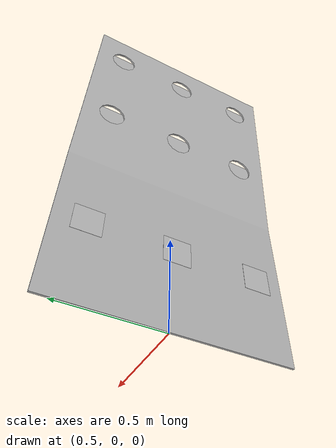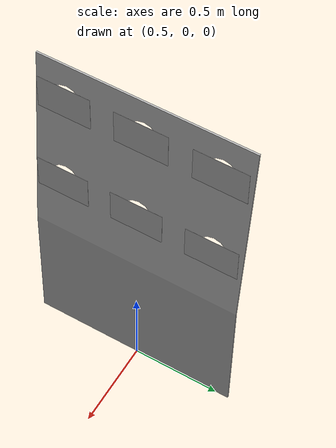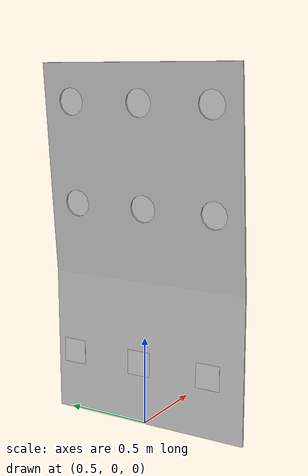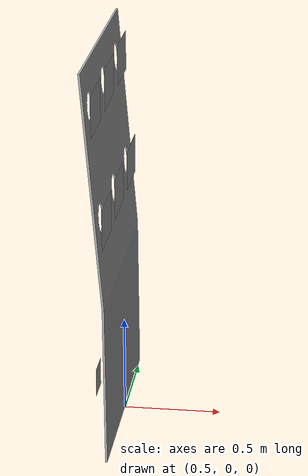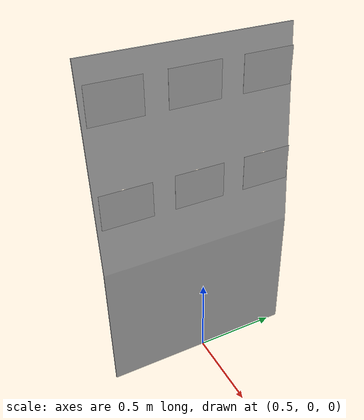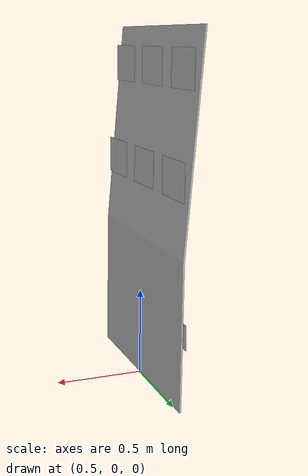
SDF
<?xml version='1.0'?>
<sdf version='1.6'>
  <model name='steel_tke_glovebox'>
    <link name='base_link'>
      <pose frame=''>0 0 0 0 0 0</pose>

      <visual name='visual'>
        <pose frame=''>0 0 0 0 0 0</pose>
        <geometry>
          <mesh>
            <uri>model://steel_tke_glovebox/meshes/steel_tke_glovebox.stl</uri>
            <scale>1 1 1</scale>
          </mesh>
        </geometry>
        <material>
          <lighting>1</lighting>
          <ambient>0.3 0.3 0.3 1</ambient>
          <diffuse>0.7 0.7 0.7 1</diffuse>
          <specular>0.01 0.01 0.01 1</specular>
          <emissive>0 0 0 1</emissive>
          <shader type='vertex'>
            <normal_map>__default__</normal_map>
          </shader>
        </material>
        <cast_shadows>1</cast_shadows>
        <transparency>0</transparency>
      </visual>
      <collision name='collision'>
        <laser_retro>0</laser_retro>
        <max_contacts>10</max_contacts>
        <pose frame=''>0.498 0.575 0 1.58 0 -1.57</pose>
        <geometry>
          <mesh>
            <uri>model://steel_tke_glovebox/meshes/steel_tke_glovebox_collision.stl</uri>
            <scale>1 1 1</scale>
          </mesh>
        </geometry>
        <contact>
          <collide_without_contact>false</collide_without_contact>
        </contact>
      </collision>
    </link>

    <joint name='1_marker_joint' type='fixed'>
      <parent>base_link</parent>
      <child>1_marker</child>
    </joint>

    <link name='1_marker'>
      <visual name='visual'>
        <pose frame=''>0.482 -0.44 1.218 0 0 0</pose>
        <geometry>
          <box>
            <size>0.001 0.297 0.210</size>
          </box>
        </geometry>
        <material>
          <script>
            <uri>model://steel_tke_glovebox/material/scripts</uri>
            <uri>model://steel_tke_glovebox/material/textures</uri>
            <name>ARtrack/1_marker</name>
          </script>
        </material>
      </visual>
    </link>

    <joint name='2_marker_joint' type='fixed'>
      <parent>base_link</parent>
      <child>2_marker</child>
    </joint>

    <link name='2_marker'>
      <visual name='visual'>
        <pose frame=''>0.48 -0.015 1.218 0 0 0</pose>
        <geometry>
          <box>
            <size>0.001 0.297 0.210</size>
          </box>
        </geometry>
        <material>
          <script>
            <uri>model://steel_tke_glovebox/material/scripts</uri>
            <uri>model://steel_tke_glovebox/material/textures</uri>
            <name>ARtrack/2_marker</name>
          </script>
        </material>
      </visual>
    </link>

    <joint name='3_marker_joint' type='fixed'>
      <parent>base_link</parent>
      <child>3_marker</child>
    </joint>

    <link name='3_marker'>
      <visual name='visual'>
        <pose frame=''>0.48 0.41 1.218 0 0 0</pose>
        <geometry>
          <box>
            <size>0.001 0.297 0.210</size>
          </box>
        </geometry>
        <material>
          <script>
            <uri>model://steel_tke_glovebox/material/scripts</uri>
            <uri>model://steel_tke_glovebox/material/textures</uri>
            <name>ARtrack/3_marker</name>
          </script>
        </material>
      </visual>
    </link>

    <joint name='4_marker_joint' type='fixed'>
      <parent>base_link</parent>
      <child>4_marker</child>
    </joint>

    <link name='4_marker'>
      <visual name='visual'>
        <pose frame=''>0.435 -0.44 1.78 0 0 0</pose>
        <geometry>
          <box>
            <size>0.001 0.297 0.210</size>
          </box>
        </geometry>
        <material>
          <script>
            <uri>model://steel_tke_glovebox/material/scripts</uri>
            <uri>model://steel_tke_glovebox/material/textures</uri>
            <name>ARtrack/4_marker</name>
          </script>
        </material>
      </visual>
    </link>

    <joint name='5_marker_joint' type='fixed'>
      <parent>base_link</parent>
      <child>5_marker</child>
    </joint>

    <link name='5_marker'>
      <visual name='visual'>
        <pose frame=''>0.435 -0.015 1.78 0 0 0</pose>
        <geometry>
          <box>
            <size>0.001 0.297 0.210</size>
          </box>
        </geometry>
        <material>
          <script>
            <uri>model://steel_tke_glovebox/material/scripts</uri>
            <uri>model://steel_tke_glovebox/material/textures</uri>
            <name>ARtrack/5_marker</name>
          </script>
        </material>
      </visual>
    </link>

    <joint name='6_marker_joint' type='fixed'>
      <parent>base_link</parent>
      <child>6_marker</child>
    </joint>

    <link name='6_marker'>
      <visual name='visual'>
        <pose frame=''>0.435 0.41 1.78 0 0 0</pose>
        <geometry>
          <box>
            <size>0.001 0.297 0.210</size>
          </box>
        </geometry>
        <material>
          <script>
            <uri>model://steel_tke_glovebox/material/scripts</uri>
            <uri>model://steel_tke_glovebox/material/textures</uri>
            <name>ARtrack/6_marker</name>
          </script>
        </material>
      </visual>
    </link>

    <joint name='gb_marker_16_joint' type='fixed'>
      <parent>base_link</parent>
      <child>gb_marker_2</child>
    </joint>

    <link name='gb_marker_16'>
      <visual name='visual'>
        <pose frame=''>0.43 -0.425 0.375 0 0 0</pose>
        <geometry>
          <box>
            <size>0.001 0.14 0.14</size>
          </box>
        </geometry>
        <material>
          <script>
            <uri>model://steel_tke_glovebox/material/scripts</uri>
            <uri>model://steel_tke_glovebox/material/textures</uri>
            <name>ARtrack/gb_marker_16</name>
          </script>
        </material>
      </visual>
    </link>

    <joint name='gb_marker_2_joint' type='fixed'>
      <parent>base_link</parent>
      <child>gb_marker_2</child>
    </joint>

    <link name='gb_marker_2'>
      <visual name='visual'>
        <pose frame=''>0.43 0 0.375 0 0 0</pose>
        <geometry>
          <box>
            <size>0.001 0.14 0.14</size>
          </box>
        </geometry>
        <material>
          <script>
            <uri>model://steel_tke_glovebox/material/scripts</uri>
            <uri>model://steel_tke_glovebox/material/textures</uri>
            <name>ARtrack/gb_marker_2</name>
          </script>
        </material>
      </visual>
    </link>

    <joint name='gb_marker_9_joint' type='fixed'>
      <parent>base_link</parent>
      <child>gb_marker_2</child>
    </joint>

    <link name='gb_marker_9'>
      <visual name='visual'>
        <pose frame=''>0.43 0.425 0.375 0 0 0</pose>
        <geometry>
          <box>
            <size>0.001 0.14 0.14</size>
          </box>
        </geometry>
        <material>
          <script>
            <uri>model://steel_tke_glovebox/material/scripts</uri>
            <uri>model://steel_tke_glovebox/material/textures</uri>
            <name>ARtrack/gb_marker_9</name>
          </script>
        </material>
      </visual>
    </link>

    <static>1</static>
    <allow_auto_disable>1</allow_auto_disable>
  </model>
</sdf>
